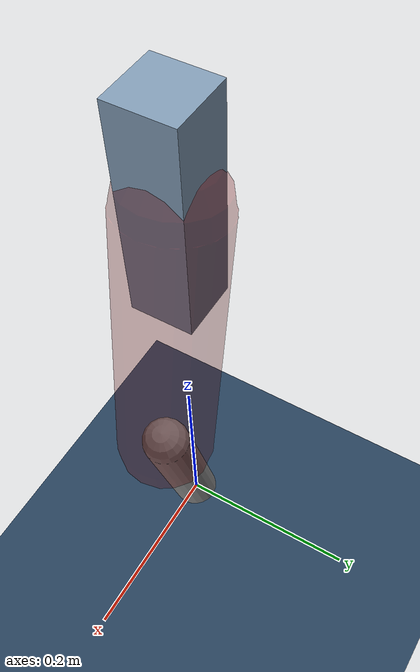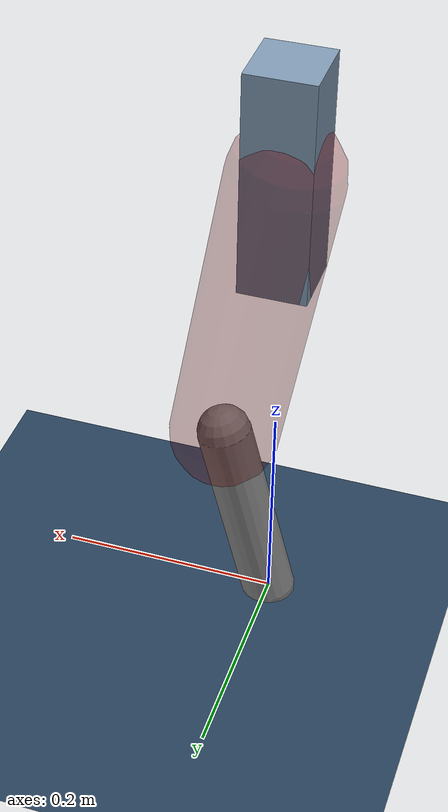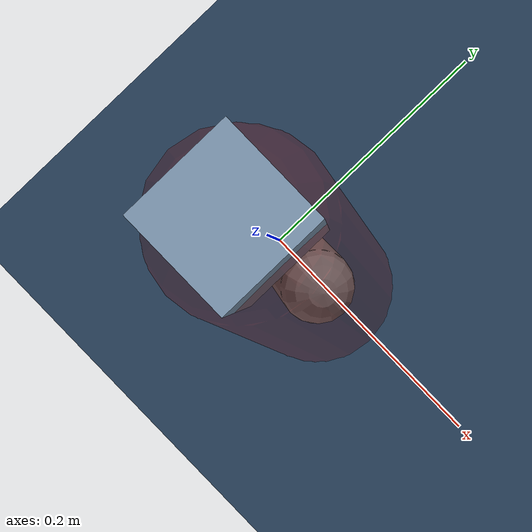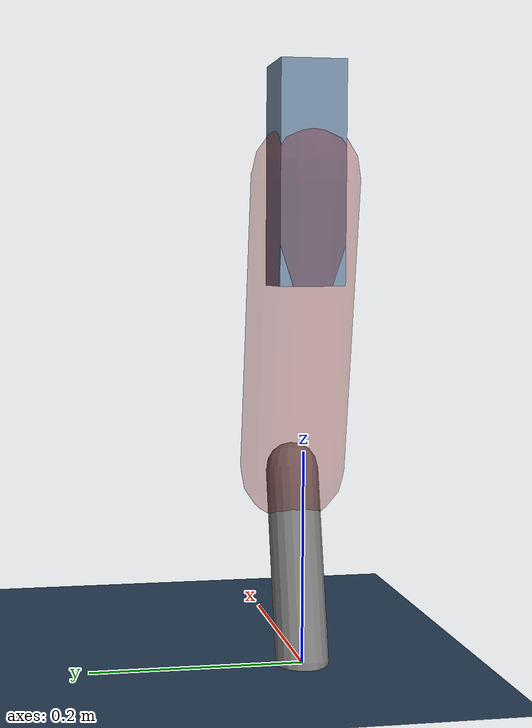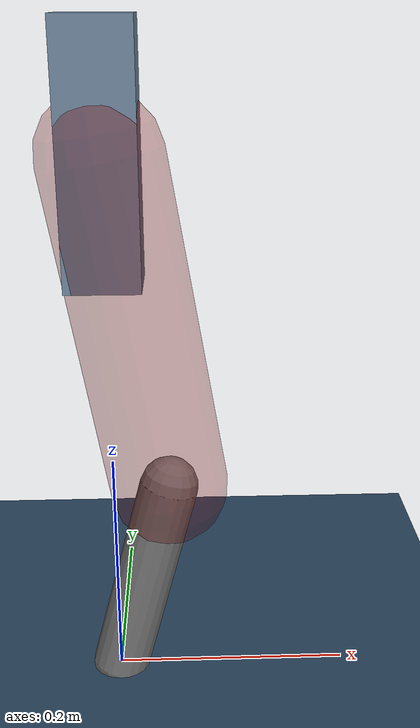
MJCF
<mujoco model="Hopper2D">
	<compiler inertiafromgeom="true" angle="radian" />
	<option timestep="0.001" integrator="implicit" cone="elliptic" solver="Newton" tolerance="1e-10" />

	<default>
		<geom contype="1" conaffinity="1" condim="3" friction="2 0.005 0.0001" solref="0.005 1" />
		<joint limited="true" damping="0.1" />
	</default>

	<asset>
		<texture name="skybox" type="skybox" builtin="gradient" rgb1=".4 .6 .8" rgb2="0 0 0" width="800" height="800" />
		<texture name="grid" type="2d" builtin="checker" rgb1=".1 .2 .3" rgb2=".2 .3 .4" width="300" height="300" mark="edge" markrgb=".2 .3 .4" />
		<material name="ground" texture="grid" texrepeat="1 1" texuniform="true" reflectance="0.1" />
		<material name="leg" rgba="0.5 0.6 0.7 1" />
	</asset>

	<worldbody>

		<geom name="floor" type="plane" size="5 5 0.25" material="ground" />

		<light directional="false" diffuse="0.8 0.8 0.8" specular="0.3 0.3 0.3" pos="0 0 2" dir="0 0 -1" />
		<light mode="targetbodycom" target="base" directional="false" diffuse="0.8 0.8 0.8" specular="0.3 0.3 0.3" pos="0 0 2" dir="0 0 -1" />

		<camera name="fixed" pos="0 -2 1" xyaxes="1 0 0 0 0 1" />
		<camera name="tracking" mode="trackcom" pos="0 -3 1" />

		<body name="root" pos="0 0 0.4535167333881983">
			<joint name="slide_x" type="slide" axis="1 0 0" range="-100 100" />
			<joint name="slide_z" type="slide" axis="0 0 1" range="0 10" />

			<body name="base" pos="0 0 0">
				<geom name="torso" type="box" size="0.03 0.03 0.1" mass="2.234" material="leg" />

				<body name="link1" pos="0 0 0" euler="0 1.4030100800991465 0">
					<joint type="hinge" axis="0 -1 0" pos="0 0 0" name="hinge1" limited="true" range="-3.14 3.14" stiffness="0" damping="0.1" />
					<geom name="thigh" type="capsule" fromto="0 0 0 0.28011644742297226 0 0" size="0.05" rgba="0.5 0 0 0.3" mass="0.935414408042025" />

					<body name="link2" pos="0.28011644742297226 0 0" euler="0 0.4257038757373793 0">
						<joint type="hinge" axis="0 -1 0" pos="0 0 0" name="hinge2" limited="true" range="-3.14 3.14" stiffness="0" damping="0.1" />
						<geom name="shank" type="capsule" fromto="0 0 0 0.18340028596522603 0 0" size="0.025" mass="0.3868202287721808" />

					</body>
				</body>
			</body>
		</body>
	</worldbody>

	<actuator>
		<motor name="torque1" joint="hinge1" ctrlrange="-65.36955358161973 65.36955358161973" ctrllimited="true" gear="1" />
		<motor name="torque2" joint="hinge2" ctrlrange="-72.41604732018726 72.41604732018726" ctrllimited="true" gear="1" />
	</actuator>
</mujoco>
